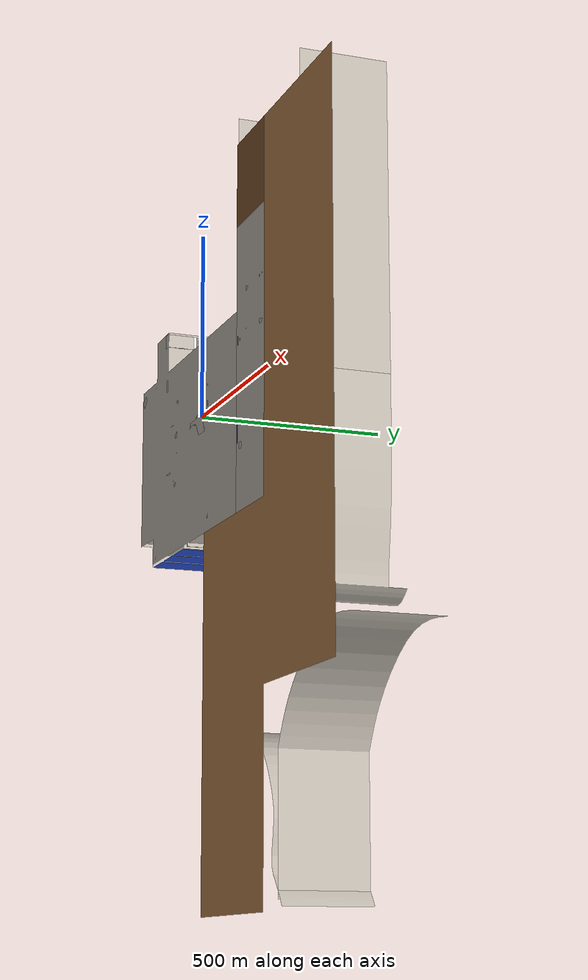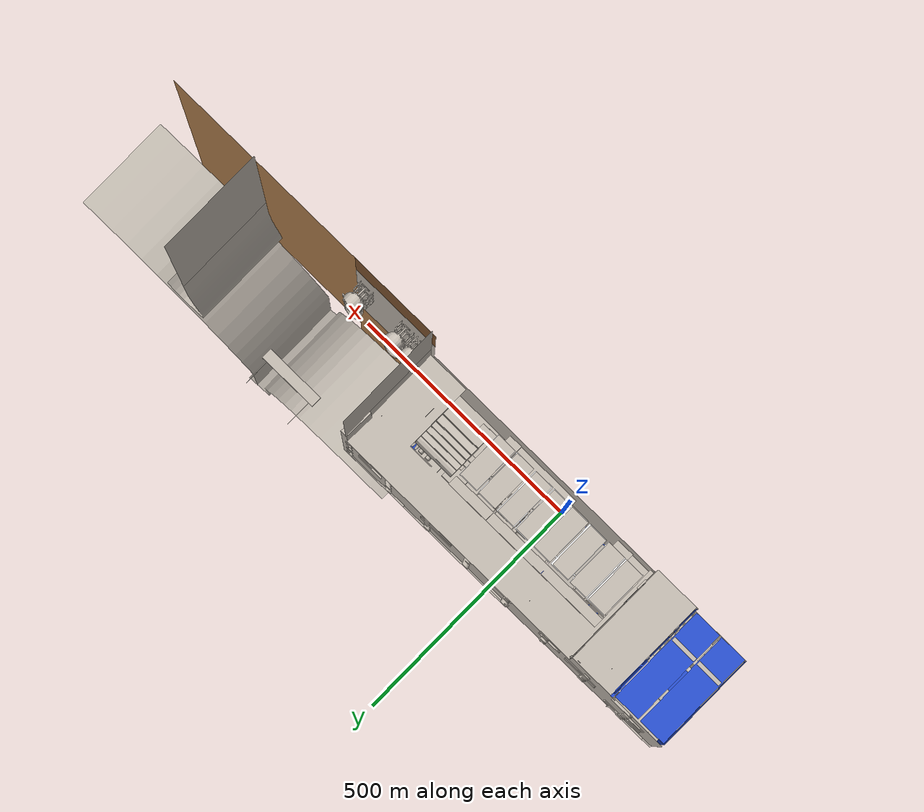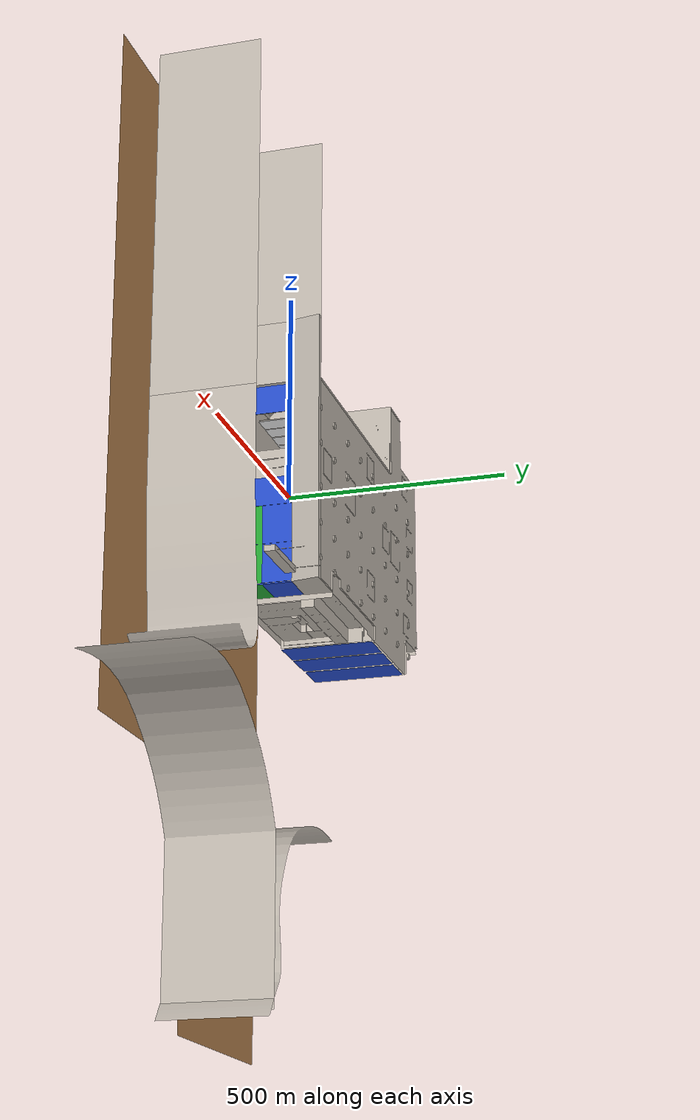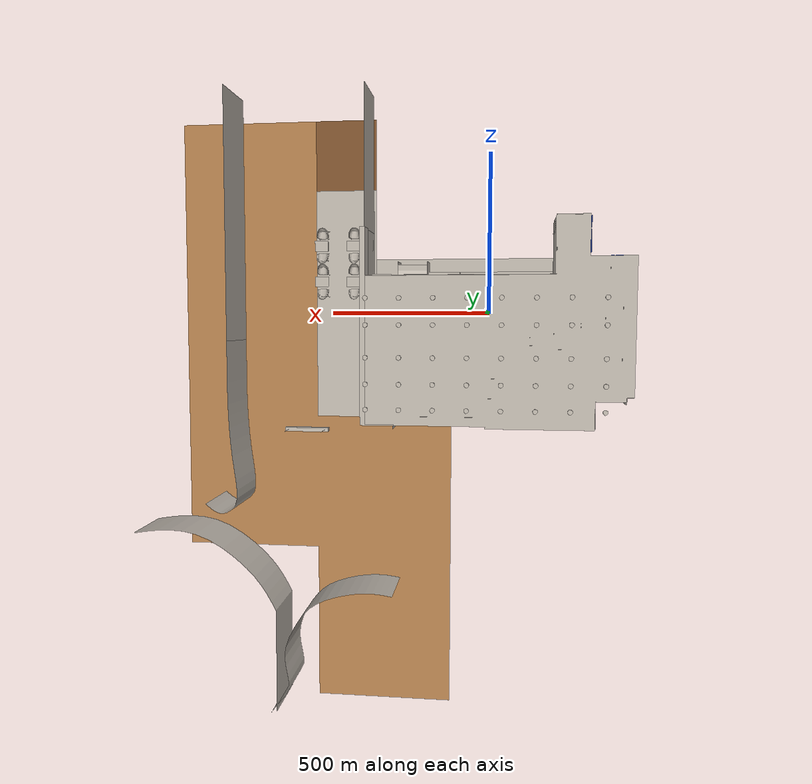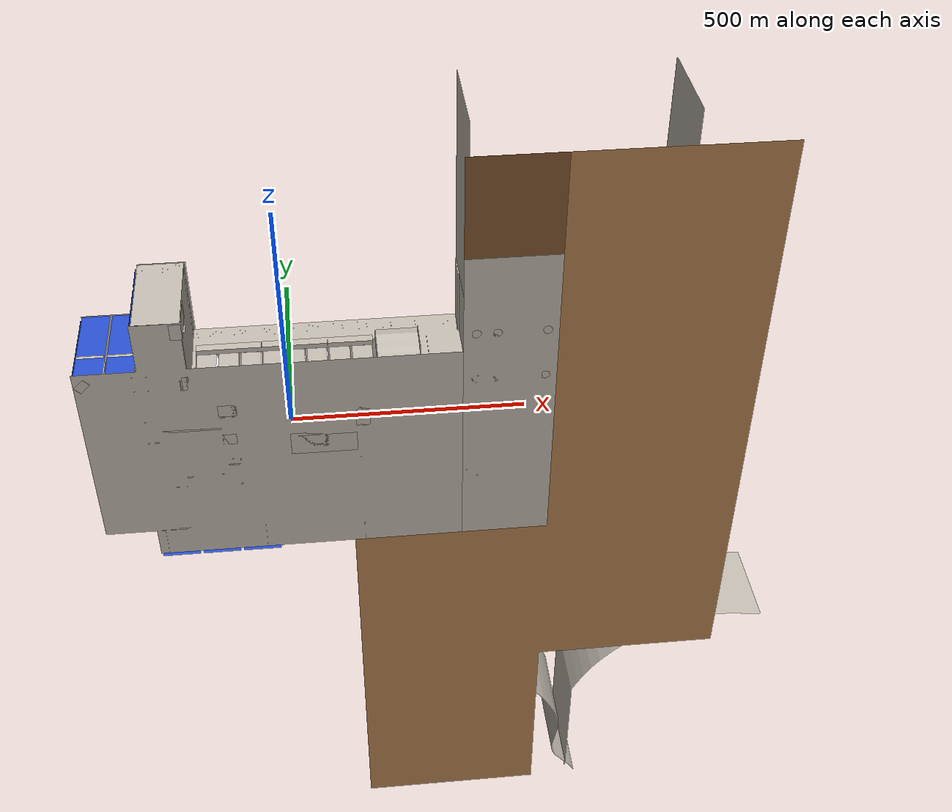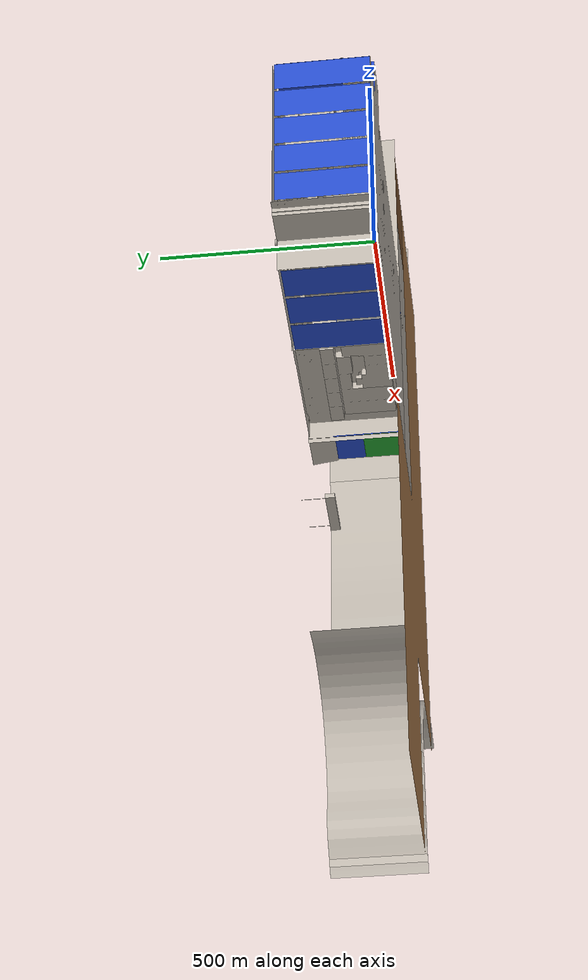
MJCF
<mujoco model="store">
  <default>
    <default class="visual">
      <geom group="2" type="mesh" contype="0" conaffinity="0"/>
    </default>
    <default class="collision">
      <geom group="3" type="mesh"/>
    </default>
  </default>
  <asset>
    <texture type="2d" name="2-stack-wp1DiffuseMap" file="2-stack-wp1DiffuseMap.png"/>
    <material name="2_stack_wp1" texture="2-stack-wp1DiffuseMap" specular="0.0" shininess="0.010000005"/>
    <texture type="2d" name="2-stack-wp3DiffuseMap" file="2-stack-wp3DiffuseMap.png"/>
    <material name="2_stack_wp3" texture="2-stack-wp3DiffuseMap" specular="0.0" shininess="0.010000005"/>
    <texture type="2d" name="2-wp-1DiffuseMap" file="2-wp-1DiffuseMap.png"/>
    <material name="2_wp_1" texture="2-wp-1DiffuseMap" specular="0.0" shininess="0.010000005"/>
    <texture type="2d" name="2-wp-2DiffuseMap" file="2-wp-2DiffuseMap.png"/>
    <material name="2_wp_2" texture="2-wp-2DiffuseMap" specular="0.0" shininess="0.010000005"/>
    <texture type="2d" name="711-D-GEDiffuseMap" file="711-D-GEDiffuseMap.png"/>
    <material name="711_D_GE" texture="711-D-GEDiffuseMap" specular="0.0" shininess="0.010000005"/>
    <texture type="2d" name="711-Stacks-1DiffuseMap" file="711-Stacks-1DiffuseMap.png"/>
    <material name="711_Stacks_1" texture="711-Stacks-1DiffuseMap" specular="0.0" shininess="0.010000005"/>
    <texture type="2d" name="711-Stacks-2DiffuseMap" file="711-Stacks-2DiffuseMap.png"/>
    <material name="711_Stacks_2" texture="711-Stacks-2DiffuseMap" specular="0.0" shininess="0.010000005"/>
    <texture type="2d" name="711-Stacks-3DiffuseMap" file="711-Stacks-3DiffuseMap.png"/>
    <material name="711_Stacks_3" texture="711-Stacks-3DiffuseMap" specular="0.0" shininess="0.010000005"/>
    <texture type="2d" name="711-Stacks-Bake-1DiffuseMap" file="711-Stacks-Bake-1DiffuseMap.png"/>
    <material name="711_Stacks_Bake_1" texture="711-Stacks-Bake-1DiffuseMap" specular="0.0" shininess="0.010000005"/>
    <texture type="2d" name="711-Stacks-ICEDiffuseMap" file="711-Stacks-ICEDiffuseMap.png"/>
    <material name="711_Stacks_ICE" texture="711-Stacks-ICEDiffuseMap" specular="0.0" shininess="0.010000005"/>
    <texture type="2d" name="711-Stacks-fastfoodDiffuseMap" file="711-Stacks-fastfoodDiffuseMap.png"/>
    <material name="711_Stacks_fastfood" texture="711-Stacks-fastfoodDiffuseMap" specular="0.0" shininess="0.010000005"/>
    <texture type="2d" name="Glass-Blue" file="Glass-Blue.png"/>
    <material name="711_wps_007456" texture="Glass-Blue" specular="0.0" shininess="0.010000005"/>
    <texture type="2d" name="Glass-Blue-2" file="Glass-Blue-2.png"/>
    <material name="711_wps_007456ccv" texture="Glass-Blue-2" specular="0.0" shininess="0.010000005"/>
    <texture type="2d" name="Stacks-unbrella-04" file="Stacks-unbrella-04.png"/>
    <material name="722_Stacks_Unbake_302_VB" texture="Stacks-unbrella-04" specular="0.0" shininess="0.010000005"/>
    <texture type="2d" name="722-Stacks-cashier-03DiffuseMap" file="722-Stacks-cashier-03DiffuseMap.png"/>
    <material name="722_Stacks_cashier_03" texture="722-Stacks-cashier-03DiffuseMap" specular="0.0" shininess="0.010000005"/>
    <texture type="2d" name="Bz-x1" file="Bz-x1.png"/>
    <material name="BZ_x01" texture="Bz-x1" specular="0.0" shininess="0.010000005"/>
    <texture type="2d" name="B-Stack02DiffuseMap" file="B-Stack02DiffuseMap.png"/>
    <material name="B_Stack022" texture="B-Stack02DiffuseMap" specular="0.0" shininess="0.010000005"/>
    <material name="COcola" specular="0.0" shininess="0.010000005" rgba="0.086300 0.086300 0.086300 1.000000"/>
    <texture type="2d" name="Glass-White" file="Glass-White.png"/>
    <material name="COcolasc" texture="Glass-White" specular="0.0" shininess="0.010000005"/>
    <material name="Cashier_glass" texture="Glass-Blue" specular="0.0" shininess="0.010000005"/>
    <material name="Cashier_glasssss" texture="Glass-Blue-2" specular="0.0" shininess="0.010000005"/>
    <texture type="2d" name="Ceiling-01DiffuseMap" file="Ceiling-01DiffuseMap.png"/>
    <material name="Ceiling_01" texture="Ceiling-01DiffuseMap" specular="0.0" shininess="0.010000005"/>
    <texture type="2d" name="Cocola3" file="Cocola3.png"/>
    <material name="Cocola_alpha" texture="Cocola3" specular="0.0" shininess="0.010000005"/>
    <texture type="2d" name="Stacks-unbrella-05" file="Stacks-unbrella-05.png"/>
    <material name="Cocola_alphassrt" texture="Stacks-unbrella-05" specular="0.0" shininess="0.010000005"/>
    <texture type="2d" name="Stacks-unbrella-07" file="Stacks-unbrella-07.png"/>
    <material name="Cocola_alphassty" texture="Stacks-unbrella-07" specular="0.0" shininess="0.010000005"/>
    <texture type="2d" name="Stacks-Water-02-004" file="Stacks-Water-02-004.png"/>
    <material name="Cocola_alphaww" texture="Stacks-Water-02-004" specular="0.0" shininess="0.010000005"/>
    <texture type="2d" name="Cocola3-3" file="Cocola3-3.png"/>
    <material name="Cocola_alphawwre" texture="Cocola3-3" specular="0.0" shininess="0.010000005"/>
    <texture type="2d" name="Stacks-Water-02-0055" file="Stacks-Water-02-0055.png"/>
    <material name="Cocola_alphawwress" texture="Stacks-Water-02-0055" specular="0.0" shininess="0.010000005"/>
    <texture type="2d" name="711-wps-009" file="711-wps-009.png"/>
    <material name="D_wp_002oo" texture="711-wps-009" specular="0.0" shininess="0.010000005"/>
    <texture type="2d" name="FSU5-01DiffuseMap" file="FSU5-01DiffuseMap.png"/>
    <material name="FSU5_01" texture="FSU5-01DiffuseMap" specular="0.0" shininess="0.010000005"/>
    <material name="FZ_t_04sglass" texture="Glass-Blue" specular="0.0" shininess="0.010000005"/>
    <texture type="2d" name="Stacks-FZ-11" file="Stacks-FZ-11.png"/>
    <material name="FZ_t_07" texture="Stacks-FZ-11" specular="0.0" shininess="0.010000005"/>
    <texture type="2d" name="Stacks-FZ-12" file="Stacks-FZ-12.png"/>
    <material name="FZ_t_07ss" texture="Stacks-FZ-12" specular="0.0" shininess="0.010000005"/>
    <texture type="2d" name="Floor-1DiffuseMap" file="Floor-1DiffuseMap.png"/>
    <material name="Floor_1" texture="Floor-1DiffuseMap" specular="0.0" shininess="0.010000005"/>
    <texture type="2d" name="Floor-2DiffuseMap" file="Floor-2DiffuseMap.png"/>
    <material name="Floor_2" texture="Floor-2DiffuseMap" specular="0.0" shininess="0.010000005"/>
    <texture type="2d" name="white" file="white.png"/>
    <material name="Material__180" texture="white" specular="0.0" shininess="0.010000005"/>
    <texture type="2d" name="darkgrey" file="darkgrey.png"/>
    <material name="Material__181" texture="darkgrey" specular="0.0" shininess="0.010000005"/>
    <texture type="2d" name="711-wps-013" file="711-wps-013.png"/>
    <material name="Material__19522eert" texture="711-wps-013" specular="0.0" shininess="0.010000005"/>
    <texture type="2d" name="711-wps-015" file="711-wps-015.png"/>
    <material name="Material__19522eert3" texture="711-wps-015" specular="0.0" shininess="0.010000005"/>
    <texture type="2d" name="711-wps-014" file="711-wps-014.png"/>
    <material name="Material__19522eert3f" texture="711-wps-014" specular="0.0" shininess="0.010000005"/>
    <texture type="2d" name="wooden-floor01" file="wooden-floor01.png"/>
    <material name="Material__19523" texture="wooden-floor01" specular="0.0" shininess="0.010000005"/>
    <texture type="2d" name="shop-01" file="shop-01.png"/>
    <material name="Material__19526" texture="shop-01" specular="0.0" shininess="0.010000005"/>
    <texture type="2d" name="shop-02" file="shop-02.png"/>
    <material name="Material__19527" texture="shop-02" specular="0.0" shininess="0.010000005"/>
    <texture type="2d" name="shop-03" file="shop-03.png"/>
    <material name="Material__19539" texture="shop-03" specular="0.0" shininess="0.010000005"/>
    <texture type="2d" name="enviornment001" file="enviornment001.png"/>
    <material name="Material__19541" texture="enviornment001" specular="0.0" shininess="0.010000005"/>
    <texture type="2d" name="enviornment002" file="enviornment002.png"/>
    <material name="Material__19542" texture="enviornment002" specular="0.0" shininess="0.010000005"/>
    <texture type="2d" name="enviornment003" file="enviornment003.png"/>
    <material name="Material__19543" texture="enviornment003" specular="0.0" shininess="0.010000005"/>
    <texture type="2d" name="Window03-T-01" file="Window03-T-01.png"/>
    <material name="Material__19546" texture="Window03-T-01" specular="0.0" shininess="0.010000005"/>
    <texture type="2d" name="door-signage01" file="door-signage01.png"/>
    <material name="Material__19547" texture="door-signage01" specular="0.0" shininess="0.010000005"/>
    <texture type="2d" name="light01" file="light01.png"/>
    <material name="Material__19551" texture="light01" specular="0.0" shininess="0.010000005"/>
    <material name="Material__24463" texture="door-signage01" specular="0.0" shininess="0.010000005"/>
    <texture type="2d" name="sign-002" file="sign-002.png"/>
    <material name="Material__24464" texture="sign-002" specular="0.0" shininess="0.010000005"/>
    <texture type="2d" name="Window-sign01" file="Window-sign01.png"/>
    <material name="Material__24465" texture="Window-sign01" specular="0.0" shininess="0.010000005"/>
    <texture type="2d" name="Pull01" file="Pull01.png"/>
    <material name="Material__24466" texture="Pull01" specular="0.0" shininess="0.010000005"/>
    <texture type="2d" name="Glass-darkgreen" file="Glass-darkgreen.png"/>
    <material name="Material__24470" texture="Glass-darkgreen" specular="0.0" shininess="0.010000005"/>
    <texture type="2d" name="sign-01-r" file="sign-01-r.png"/>
    <material name="Material__24528" texture="sign-01-r" specular="0.0" shininess="0.010000005"/>
    <texture type="2d" name="sign-01" file="sign-01.png"/>
    <material name="Material__24529" texture="sign-01" specular="0.0" shininess="0.010000005"/>
    <texture type="2d" name="sign-01-b" file="sign-01-b.png"/>
    <material name="Material__24530" texture="sign-01-b" specular="0.0" shininess="0.010000005"/>
    <material name="Material__24543" texture="sign-01" specular="0.0" shininess="0.010000005"/>
    <texture type="2d" name="B-product01DiffuseMap" file="B-product01DiffuseMap.png"/>
    <material name="Material__25495" texture="B-product01DiffuseMap" specular="0.0" shininess="0.010000005"/>
    <texture type="2d" name="711-Stacks-cashierDiffuseMap" file="711-Stacks-cashierDiffuseMap.png"/>
    <material name="Material__25885" texture="711-Stacks-cashierDiffuseMap" specular="0.0" shininess="0.010000005"/>
    <texture type="2d" name="2-stack-wp2DiffuseMap" file="2-stack-wp2DiffuseMap.png"/>
    <material name="Material__26731" texture="2-stack-wp2DiffuseMap" specular="0.0" shininess="0.010000005"/>
    <texture type="2d" name="711-Stacks-cashier2DiffuseMap" file="711-Stacks-cashier2DiffuseMap.png"/>
    <material name="Material__26825" texture="711-Stacks-cashier2DiffuseMap" specular="0.0" shininess="0.010000005"/>
    <material name="Material__272" texture="white" specular="0.0" shininess="0.010000005"/>
    <material name="Material__354" texture="white" specular="0.0" shininess="0.010000005"/>
    <texture type="2d" name="B-bakery-01-glass-01" file="B-bakery-01-glass-01.png"/>
    <material name="Material__355" texture="B-bakery-01-glass-01" specular="0.0" shininess="0.010000005"/>
    <texture type="2d" name="Arch-board01" file="Arch-board01.png"/>
    <material name="Material__3563" texture="Arch-board01" specular="0.0" shininess="0.010000005"/>
    <material name="Material__368" texture="white" specular="0.0" shininess="0.010000005"/>
    <texture type="2d" name="B-bakery-darkglass" file="B-bakery-darkglass.png"/>
    <material name="Material__370" texture="B-bakery-darkglass" specular="0.0" shininess="0.010000005"/>
    <texture type="2d" name="refrigerator-darkgreen" file="refrigerator-darkgreen.png"/>
    <material name="Material__404" texture="refrigerator-darkgreen" specular="0.0" shininess="0.010000005"/>
    <texture type="2d" name="floor-brown" file="floor-brown.png"/>
    <material name="Material__691" texture="floor-brown" specular="0.0" shininess="0.010000005"/>
    <texture type="2d" name="Exit01" file="Exit01.png"/>
    <material name="Plane051_VB" texture="Exit01" specular="0.0" shininess="0.010000005"/>
    <texture type="2d" name="Stacks-Cashier-A3-001" file="Stacks-Cashier-A3-001.png"/>
    <material name="Stacks_A3_001" texture="Stacks-Cashier-A3-001" specular="0.0" shininess="0.010000005"/>
    <material name="Stacks_A5_003vv" specular="0.0" shininess="0.010000005" rgba="0.282400 0.282400 0.282400 1.000000"/>
    <texture type="2d" name="Stacks-Cashier-02-016" file="Stacks-Cashier-02-016.png"/>
    <material name="Stacks_Chahier_03_006" texture="Stacks-Cashier-02-016" specular="0.0" shininess="0.010000005"/>
    <material name="Stacks_Chshier_06_001" specular="0.0" shininess="0.010000005" rgba="0.960800 0.960800 0.960800 1.000000"/>
    <texture type="2d" name="Stacks-Cashier-06-001" file="Stacks-Cashier-06-001.png"/>
    <material name="Stacks_Chshier_06_001q" texture="Stacks-Cashier-06-001" specular="0.0" shininess="0.010000005"/>
    <texture type="2d" name="Stacks-Cashier-06-002" file="Stacks-Cashier-06-002.png"/>
    <material name="Stacks_Chshier_06_001qx" texture="Stacks-Cashier-06-002" specular="0.0" shininess="0.010000005"/>
    <texture type="2d" name="Stacks-T-BZ-02" file="Stacks-T-BZ-02.png"/>
    <material name="Stacks_bz_x1" texture="Stacks-T-BZ-02" specular="0.0" shininess="0.010000005"/>
    <texture type="2d" name="Wall-03DiffuseMap" file="Wall-03DiffuseMap.png"/>
    <material name="Wall_03" texture="Wall-03DiffuseMap" specular="0.0" shininess="0.010000005"/>
    <texture type="2d" name="aircondition-01DiffuseMap" file="aircondition-01DiffuseMap.png"/>
    <material name="aircondition_01" texture="aircondition-01DiffuseMap" specular="0.0" shininess="0.010000005"/>
    <texture type="2d" name="board-1DiffuseMap" file="board-1DiffuseMap.png"/>
    <material name="board_1" texture="board-1DiffuseMap" specular="0.0" shininess="0.010000005"/>
    <texture type="2d" name="711-Stacks-Bake-01DiffuseMap" file="711-Stacks-Bake-01DiffuseMap.png"/>
    <material name="chair" texture="711-Stacks-Bake-01DiffuseMap" specular="0.0" shininess="0.010000005"/>
    <texture type="2d" name="dangaoDiffuseMap" file="dangaoDiffuseMap.png"/>
    <material name="dangao" texture="dangaoDiffuseMap" specular="0.0" shininess="0.010000005"/>
    <mesh file="store_0.obj"/>
    <mesh file="store_1.obj"/>
    <mesh file="store_2.obj"/>
    <mesh file="store_3.obj"/>
    <mesh file="store_4.obj"/>
    <mesh file="store_5.obj"/>
    <mesh file="store_6.obj"/>
    <mesh file="store_7.obj"/>
    <mesh file="store_8.obj"/>
    <mesh file="store_12.obj"/>
    <mesh file="store_13.obj"/>
    <mesh file="store_15.obj"/>
    <mesh file="store_16.obj"/>
    <mesh file="store_17.obj"/>
    <mesh file="store_18.obj"/>
    <mesh file="store_19.obj"/>
    <mesh file="store_20.obj"/>
    <mesh file="store_21.obj"/>
    <mesh file="store_22.obj"/>
    <mesh file="store_23.obj"/>
    <mesh file="store_24.obj"/>
    <mesh file="store_25.obj"/>
    <mesh file="store_26.obj"/>
    <mesh file="store_27.obj"/>
    <mesh file="store_28.obj"/>
    <mesh file="store_29.obj"/>
    <mesh file="store_30.obj"/>
    <mesh file="store_31.obj"/>
    <mesh file="store_32.obj"/>
    <mesh file="store_33.obj"/>
    <mesh file="store_35.obj"/>
    <mesh file="store_36.obj"/>
    <mesh file="store_37.obj"/>
    <mesh file="store_38.obj"/>
    <mesh file="store_39.obj"/>
    <mesh file="store_40.obj"/>
    <mesh file="store_41.obj"/>
    <mesh file="store_42.obj"/>
    <mesh file="store_43.obj"/>
    <mesh file="store_44.obj"/>
    <mesh file="store_45.obj"/>
    <mesh file="store_46.obj"/>
    <mesh file="store_47.obj"/>
    <mesh file="store_48.obj"/>
    <mesh file="store_49.obj"/>
    <mesh file="store_50.obj"/>
    <mesh file="store_51.obj"/>
    <mesh file="store_52.obj"/>
    <mesh file="store_53.obj"/>
    <mesh file="store_54.obj"/>
    <mesh file="store_55.obj"/>
    <mesh file="store_56.obj"/>
    <mesh file="store_57.obj"/>
    <mesh file="store_58.obj"/>
    <mesh file="store_59.obj"/>
    <mesh file="store_60.obj"/>
    <mesh file="store_61.obj"/>
    <mesh file="store_62.obj"/>
    <mesh file="store_63.obj"/>
    <mesh file="store_64.obj"/>
    <mesh file="store_66.obj"/>
    <mesh file="store_67.obj"/>
    <mesh file="store_68.obj"/>
    <mesh file="store_69.obj"/>
    <mesh file="store_70.obj"/>
    <mesh file="store_71.obj"/>
    <mesh file="store_72.obj"/>
    <mesh file="store_73.obj"/>
    <mesh file="store_74.obj"/>
    <mesh file="store_75.obj"/>
    <mesh file="store_76.obj"/>
    <mesh file="store_77.obj"/>
    <mesh file="store_78.obj"/>
    <mesh file="store_79.obj"/>
    <mesh file="store_80.obj"/>
    <mesh file="store_83.obj"/>
    <mesh file="store_84.obj"/>
    <mesh file="store_85.obj"/>
    <mesh file="store_86.obj"/>
    <mesh file="store_87.obj"/>
    <mesh file="store_88.obj"/>
    <mesh file="store_89.obj"/>
    <mesh file="store_90.obj"/>
    <mesh file="store_91.obj"/>
    <mesh file="store_92.obj"/>
    <mesh file="store_93.obj"/>
    <mesh file="store_94.obj"/>
    <mesh file="store_95.obj"/>
    <mesh file="store_96.obj"/>
    <mesh file="store_97.obj"/>
    <mesh file="store_98.obj"/>
    <mesh file="store_99.obj"/>
    <mesh file="store_100.obj"/>
    <mesh file="store_101.obj"/>
  </asset>
  <worldbody>
    <body name="store">
      <geom type="mesh" mesh="store_1" material="Material__3563" class="visual"/>
      <geom type="mesh" mesh="store_2" material="Wall_03" class="visual"/>
      <geom type="mesh" mesh="store_3" material="Material__370" class="visual"/>
      <geom type="mesh" mesh="store_4" material="Material__404" class="visual"/>
      <geom type="mesh" mesh="store_5" material="Material__368" class="visual"/>
      <geom type="mesh" mesh="store_6" material="Material__355" class="visual"/>
      <geom type="mesh" mesh="store_7" material="Material__354" class="visual"/>
      <geom type="mesh" mesh="store_8" material="Material__24466" class="visual"/>
      <geom type="mesh" mesh="store_12" material="Material__19547" class="visual"/>
      <geom type="mesh" mesh="store_13" material="Material__19546" class="visual"/>
      <geom type="mesh" mesh="store_15" material="Material__19543" class="visual"/>
      <geom type="mesh" mesh="store_16" material="Material__19542" class="visual"/>
      <geom type="mesh" mesh="store_17" material="Material__19527" class="visual"/>
      <geom type="mesh" mesh="store_18" material="Material__19526" class="visual"/>
      <geom type="mesh" mesh="store_19" material="Material__181" class="visual"/>
      <geom type="mesh" mesh="store_20" material="Material__180" class="visual"/>
      <geom type="mesh" mesh="store_21" material="Material__272" class="visual"/>
      <geom type="mesh" mesh="store_22" material="FSU5_01" class="visual"/>
      <geom type="mesh" mesh="store_23" material="Floor_2" class="visual"/>
      <geom type="mesh" mesh="store_24" material="Floor_1" class="visual"/>
      <geom type="mesh" mesh="store_25" material="dangao" class="visual"/>
      <geom type="mesh" mesh="store_26" material="Material__24543" class="visual"/>
      <geom type="mesh" mesh="store_27" material="Material__19551" class="visual"/>
      <geom type="mesh" mesh="store_28" material="chair" class="visual"/>
      <geom type="mesh" mesh="store_29" material="Ceiling_01" class="visual"/>
      <geom type="mesh" mesh="store_30" material="Material__24528" class="visual"/>
      <geom type="mesh" mesh="store_31" material="Material__24529" class="visual"/>
      <geom type="mesh" mesh="store_32" material="Material__24530" class="visual"/>
      <geom type="mesh" mesh="store_33" material="Material__24470" class="visual"/>
      <geom type="mesh" mesh="store_35" material="Material__691" class="visual"/>
      <geom type="mesh" mesh="store_36" material="Material__19539" class="visual"/>
      <geom type="mesh" mesh="store_37" material="Material__19523" class="visual"/>
      <geom type="mesh" mesh="store_38" material="board_1" class="visual"/>
      <geom type="mesh" mesh="store_43" material="B_Stack022" class="visual"/>
      <geom type="mesh" mesh="store_47" material="Material__25495" class="visual"/>
      <geom type="mesh" mesh="store_49" material="aircondition_01" class="visual"/>
      <geom type="mesh" mesh="store_52" material="Material__19522eert3f" class="visual"/>
      <geom type="mesh" mesh="store_53" material="Material__19522eert3" class="visual"/>
      <geom type="mesh" mesh="store_54" material="Material__19522eert" class="visual"/>
      <geom type="mesh" mesh="store_55" material="D_wp_002oo" class="visual"/>
      <geom type="mesh" mesh="store_56" material="711_wps_007456ccv" class="visual"/>
      <geom type="mesh" mesh="store_57" material="711_wps_007456" class="visual"/>
      <geom type="mesh" mesh="store_58" material="Cocola_alphawwress" class="visual"/>
      <geom type="mesh" mesh="store_59" material="BZ_x01" class="visual"/>
      <geom type="mesh" mesh="store_60" material="COcolasc" class="visual"/>
      <geom type="mesh" mesh="store_61" material="Cocola_alpha" class="visual"/>
      <geom type="mesh" mesh="store_63" material="Cocola_alphassty" class="visual"/>
      <geom type="mesh" mesh="store_64" material="Cocola_alphassrt" class="visual"/>
      <geom type="mesh" mesh="store_66" material="Cocola_alphaww" class="visual"/>
      <geom type="mesh" mesh="store_67" material="Stacks_Chshier_06_001q" class="visual"/>
      <geom type="mesh" mesh="store_68" material="Cocola_alphawwre" class="visual"/>
      <geom type="mesh" mesh="store_69" material="Stacks_Chshier_06_001qx" class="visual"/>
      <geom type="mesh" mesh="store_70" material="Cashier_glass" class="visual"/>
      <geom type="mesh" mesh="store_71" material="Cashier_glasssss" class="visual"/>
      <geom type="mesh" mesh="store_72" material="FZ_t_04sglass" class="visual"/>
      <geom type="mesh" mesh="store_73" material="722_Stacks_cashier_03" class="visual"/>
      <geom type="mesh" mesh="store_74" material="711_Stacks_ICE" class="visual"/>
      <geom type="mesh" mesh="store_75" material="711_Stacks_fastfood" class="visual"/>
      <geom type="mesh" mesh="store_76" material="Material__26825" class="visual"/>
      <geom type="mesh" mesh="store_77" material="Material__25885" class="visual"/>
      <geom type="mesh" mesh="store_78" material="Stacks_A5_003vv" class="visual"/>
      <geom type="mesh" mesh="store_79" material="Stacks_A3_001" class="visual"/>
      <geom type="mesh" mesh="store_80" material="Stacks_Chshier_06_001" class="visual"/>
      <geom type="mesh" mesh="store_89" material="711_Stacks_Bake_1" class="visual"/>
      <geom type="mesh" mesh="store_90" material="COcola" class="visual"/>
      <geom type="mesh" mesh="store_92" material="Stacks_bz_x1" class="visual"/>
      <geom type="mesh" mesh="store_93" material="711_Stacks_3" class="visual"/>
      <geom type="mesh" mesh="store_94" material="711_Stacks_2" class="visual"/>
      <geom type="mesh" mesh="store_95" material="711_Stacks_1" class="visual"/>
      <geom type="mesh" mesh="store_96" material="711_D_GE" class="visual"/>
      <geom type="mesh" mesh="store_97" material="2_wp_2" class="visual"/>
      <geom type="mesh" mesh="store_98" material="2_wp_1" class="visual"/>
      <geom type="mesh" mesh="store_99" material="2_stack_wp3" class="visual"/>
      <geom type="mesh" mesh="store_100" material="Material__26731" class="visual"/>
      <geom type="mesh" mesh="store_101" material="2_stack_wp1" class="visual"/>
    </body>
  </worldbody>
</mujoco>
